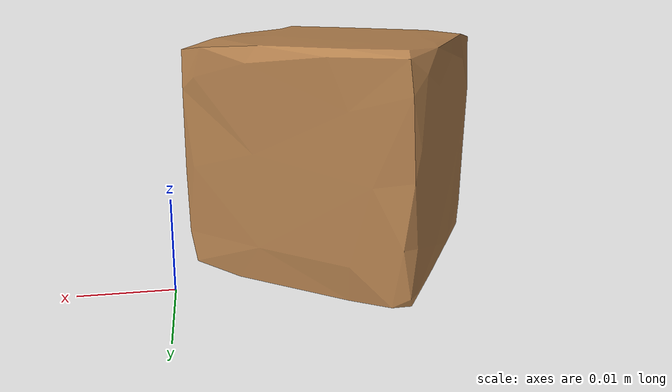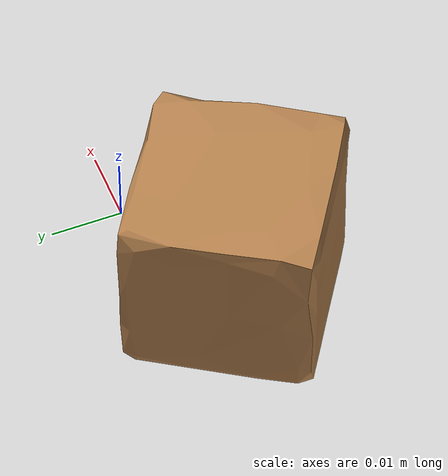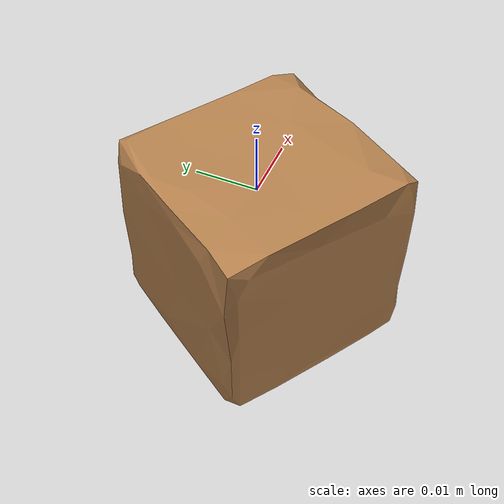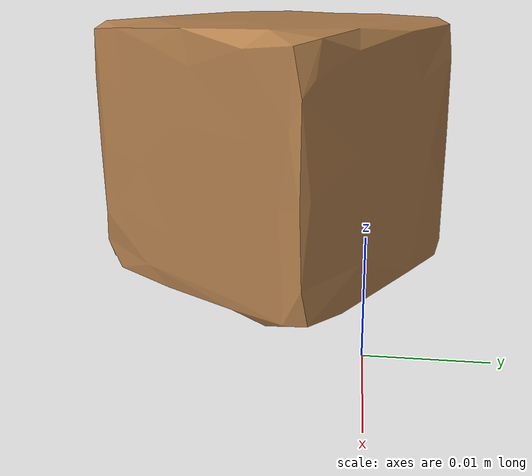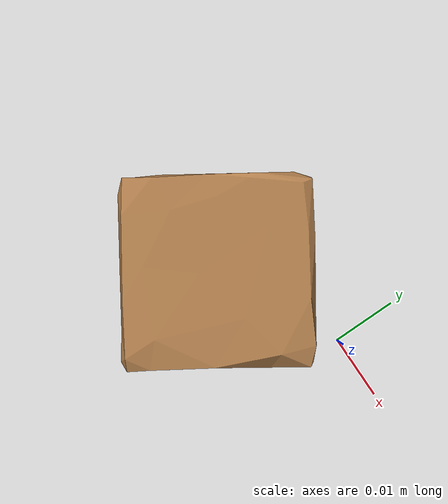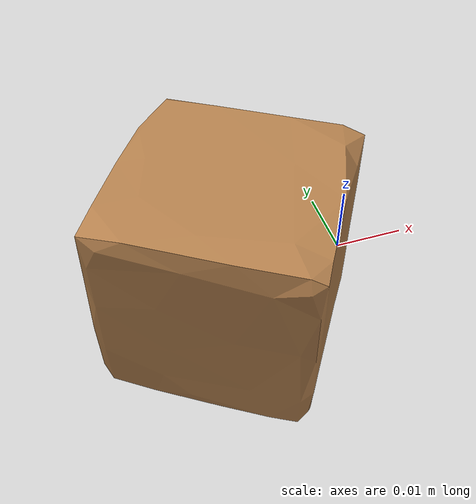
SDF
<?xml version='1.0'?>
<sdf version="1.4">
  <model name="070-b_colored_wood_blocks">
    <static>false</static>
    <link name="link">
      <inertial>
        <pose>-0.018804106271532024 -0.00887207189233931 0.012662052765792872 -2.6366432584073913 0.8484503519494926 -0.4488933152382817</pose>
        <mass>0.0016874848716963446</mass>
        <inertia>
          <ixx>1.851982780783447e-07</ixx>
          <ixy>-1.9184712765090502e-23</ixy>
          <ixz>6.696516184037282e-24</ixz>
          <iyy>1.8452954212042003e-07</iyy>
          <iyz>-2.9657983394120193e-24</iyz>
          <izz>1.8356019405154108e-07</izz>
        </inertia>
      </inertial>
      <collision name="collision">
        <geometry>
          <mesh>
            <!-- Use a downsampled mesh for collisions -->
            <uri>model:///070-b_colored_wood_blocks/070-b_colored_wood_blocks_250_collision.stl</uri>
	        </mesh>
        </geometry>
        <surface>
      </surface>
      </collision>
      <visual name="visual">
        <geometry>
          <mesh>
            <uri>model:///070-b_colored_wood_blocks/textured.obj</uri>
	        </mesh>
        </geometry>
        <material>
          <script>
            <uri>model:///070-b_colored_wood_blocks/070-b_colored_wood_blocks.material</uri>
            <name>070-b_colored_wood_blocks</name>
          </script>
        </material>
      </visual>
    </link>
  </model>
</sdf>
